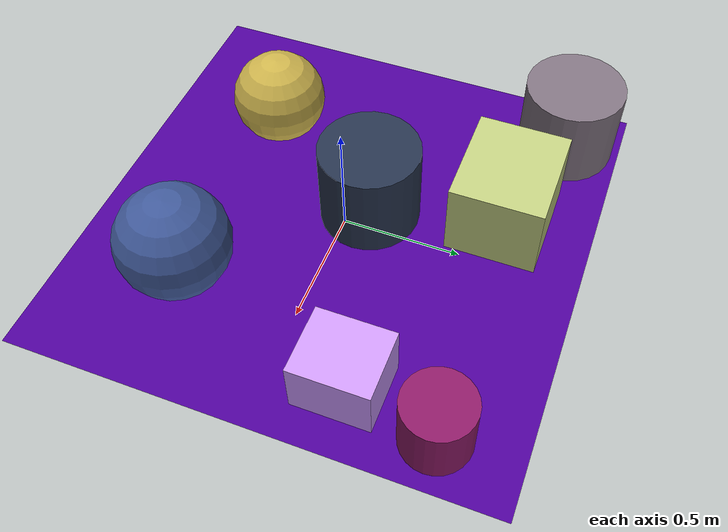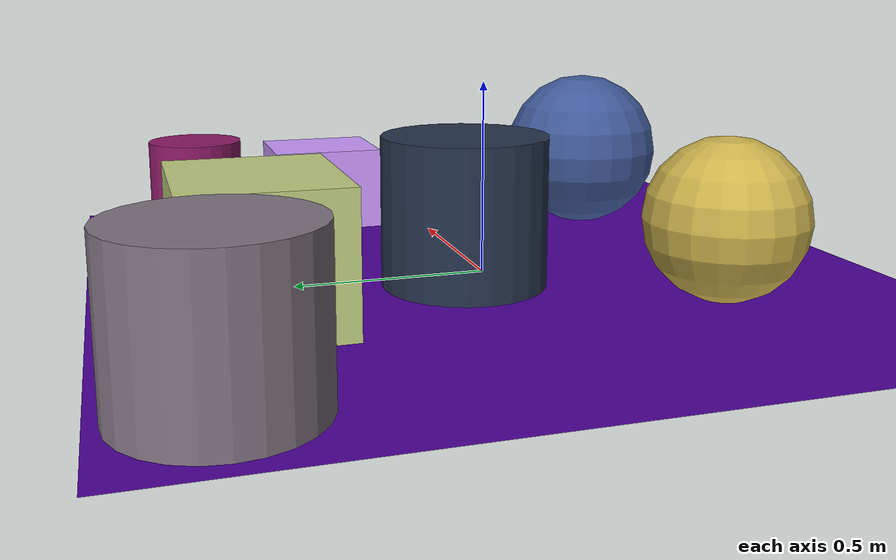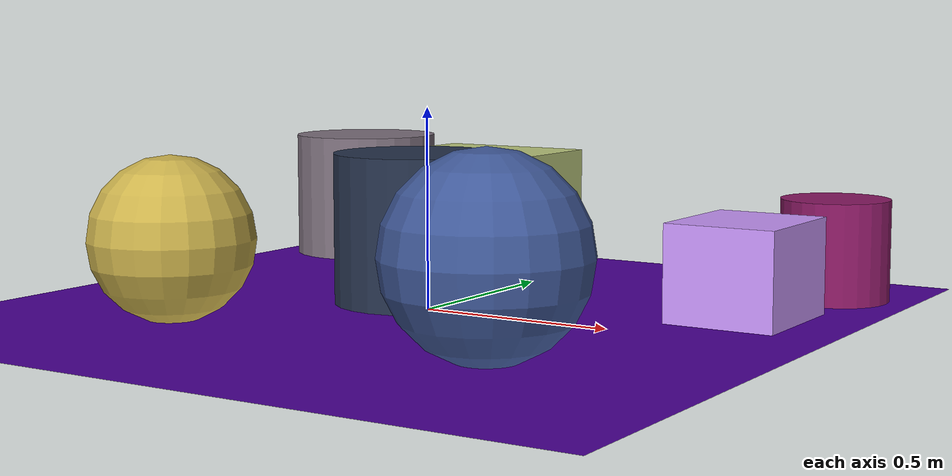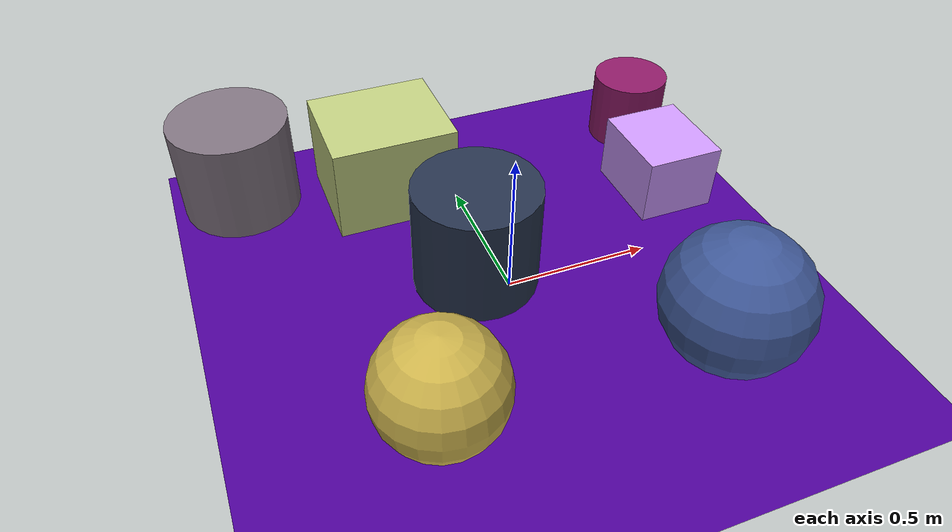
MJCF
<mujoco>
   <asset>
<texture type="skybox" builtin="gradient" rgb1="0.8 0.8 0.4" rgb2="0.5 0.8 0.5" width="256" height="256"/>
<texture name="flat_0" builtin="flat" rgb1="0.8 0.6 1.0" rgb2="0.8 0.6 1.0"  width="200" height="200"/>
<texture name="checker_1" builtin="checker" type="2d" rgb1="0.7 0.7 0.7" rgb2="0.8 0.9 0.3" width="200" height="200"/>
<texture name="checker_2" builtin="checker" type="2d" rgb1="0.1 0.4 0.5" rgb2="0.2 0.0 0.1" width="200" height="200"/>
<texture name="flat_3" builtin="flat" rgb1="0.8 0.7 0.3" rgb2="0.8 0.7 0.3"  width="200" height="200"/>
<texture name="gradient_4" builtin="gradient" rgb1="0.5 0.5 0.2" rgb2="0.0 0.2 1.0" width="200" height="200"/>
<texture name="checker_5" builtin="checker" type="2d" rgb1="0.2 0.1 0.3" rgb2="0.9 0.1 0.5" width="200" height="200"/>
<texture name="checker_6" builtin="checker" type="2d" rgb1="0.2 0.6 0.6" rgb2="0.8 0.3 0.4" width="200" height="200"/><material name="flat_0_mat" reflectance="0" texture="flat_0" texuniform="true"/>
<material name="checker_1_mat" reflectance="0" texrepeat="2 2" texture="checker_1" texuniform="false" />
<material name="checker_2_mat" reflectance="0" texrepeat="9 9" texture="checker_2" texuniform="false" />
<material name="flat_3_mat" reflectance="0" texture="flat_3" texuniform="true"/>
<material name="gradient_4_mat" reflectance="0" texture="gradient_4" texuniform="true"/>
<material name="checker_5_mat" reflectance="0" texrepeat="7 7" texture="checker_5" texuniform="false" />
<material name="checker_6_mat" reflectance="0" texrepeat="6 6" texture="checker_6" texuniform="false" />
   </asset>

   <worldbody>
      <light diffuse=".9 .9 .9" pos="0 0 3" dir="0 0 -1"/>
     <geom type="plane" size="1 1 0.1" rgba="0.3 0.0 0.6 1"/>
<geom type="box" pos="0.72 0.29 0.12" size="0.14 0.16 0.12" material="flat_0_mat" />
<geom type="box" pos="-0.24 0.62 0.17" size="0.22 0.19 0.17" material="checker_1_mat" />
<geom type="cylinder" pos="-0.09 0.08 0.19" size="0.21 0.19 0.19" material="checker_2_mat" />
<geom type="sphere" pos="-0.41 -0.47 0.2" size="0.2 0.2 0.2" material="flat_3_mat" />
<geom type="sphere" pos="0.49 -0.5 0.23" size="0.23 0.23 0.23" material="gradient_4_mat" />
<geom type="cylinder" pos="0.8 0.67 0.13" size="0.14 0.13 0.13" material="checker_5_mat" />
<geom type="cylinder" pos="-0.75 0.76 0.18" size="0.21 0.18 0.18" material="checker_6_mat" /><camera euler="60 0 180" fovy="60" name="camera_a" pos="0 -1.5 1"></camera>   </worldbody>
</mujoco>
